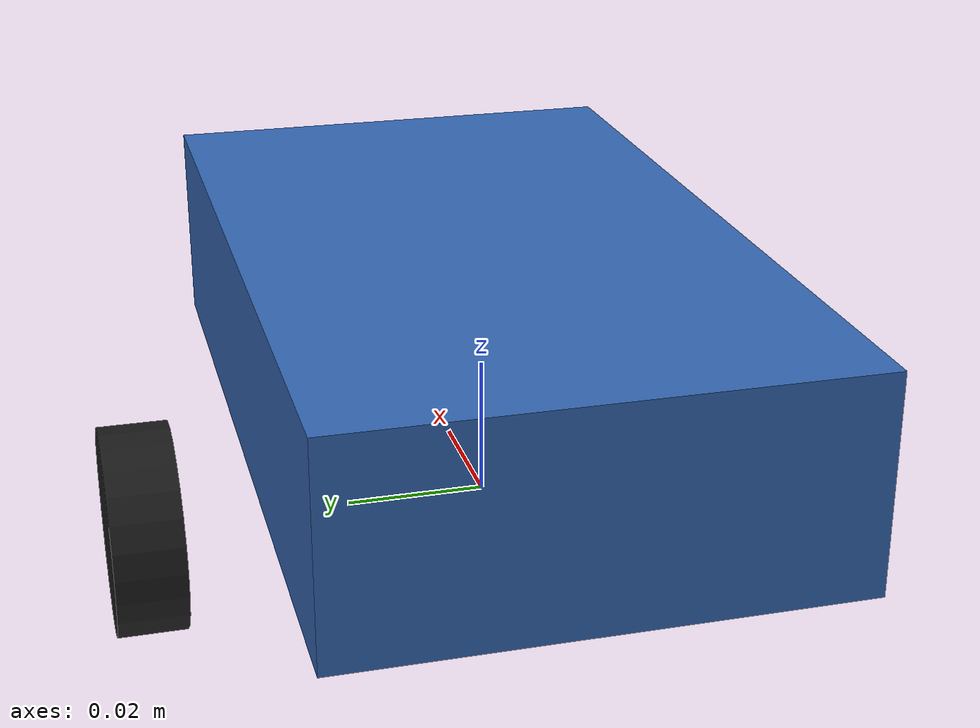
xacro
<?xml version="1.0"?>
<!-- Basic differential drive mobile base -->
<robot xmlns:xacro="http://www.ros.org/wiki/xacro" name="murin">
  <xacro:arg name="transport" default="simulation"/>
  <xacro:arg name="serial_port" default=""/>
  <xacro:arg name="baud_rate" default="2000000"/>
  <xacro:arg name="wheel_radius" default="0.015"/>
  <xacro:arg name="wheel_separation" default="0.10"/>
  <xacro:arg name="require_bridge" default="false"/>
  <xacro:arg name="prefix" default="" />
  <xacro:arg name="use_mock_hardware" default="false" />
  <xacro:arg name="disable_commands" default="false"/>

  <xacro:include filename="$(find murin_control)/urdf/murin_description.urdf.xacro" />

  <!-- Import Murin ros2_control description -->
  <xacro:include filename="$(find murin_control)/ros2_control/murin.ros2_control.xacro" />

  <xacro:murin_description prefix="$(arg prefix)" wheel_radius="$(arg wheel_radius)" wheel_separation="$(arg wheel_separation)" />

  <xacro:murin_ros2_control
    transport="$(arg transport)" serial_port="$(arg serial_port)" baud_rate="$(arg baud_rate)" wheel_radius="$(arg wheel_radius)" require_bridge="$(arg require_bridge)" name="Murin" prefix="$(arg prefix)" use_mock_hardware="$(arg use_mock_hardware)" disable_commands="$(arg disable_commands)" />

</robot>

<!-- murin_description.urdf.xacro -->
<robot xmlns:xacro="http://www.ros.org/wiki/xacro">
  <!-- Schematic body dimensions; replace with measured chassis geometry as needed. -->
  <xacro:macro name="murin_description" params="prefix wheel_radius wheel_separation">
    <link name="${prefix}base_link">
      <visual>
        <origin xyz="0 0 0.025"/>
        <geometry><box size="0.12 0.07 0.03"/></geometry>
        <material name="murin_body"><color rgba="0.2 0.4 0.7 1"/></material>
      </visual>
      <collision>
        <origin xyz="0 0 0.025"/>
        <geometry><box size="0.12 0.07 0.03"/></geometry>
      </collision>
    </link>
    <xacro:macro name="murin_wheel" params="side sign">
      <link name="${prefix}${side}_wheel">
        <visual>
          <origin rpy="${pi / 2} 0 0"/>
          <geometry><cylinder radius="${wheel_radius}" length="0.01"/></geometry>
          <material name="murin_${side}_tire"><color rgba="0.1 0.1 0.1 1"/></material>
        </visual>
        <collision>
          <origin rpy="${pi / 2} 0 0"/>
          <geometry><cylinder radius="${wheel_radius}" length="0.01"/></geometry>
        </collision>
      </link>
      <joint name="${prefix}${side}_wheel_joint" type="continuous">
        <parent link="${prefix}base_link"/>
        <child link="${prefix}${side}_wheel"/>
        <origin xyz="0 ${sign * wheel_separation / 2} 0"/>
        <axis xyz="0 1 0"/>
      </joint>
    </xacro:macro>
    <xacro:murin_wheel side="left" sign="1"/>
    <xacro:murin_wheel side="right" sign="-1"/>
  </xacro:macro>
</robot>
